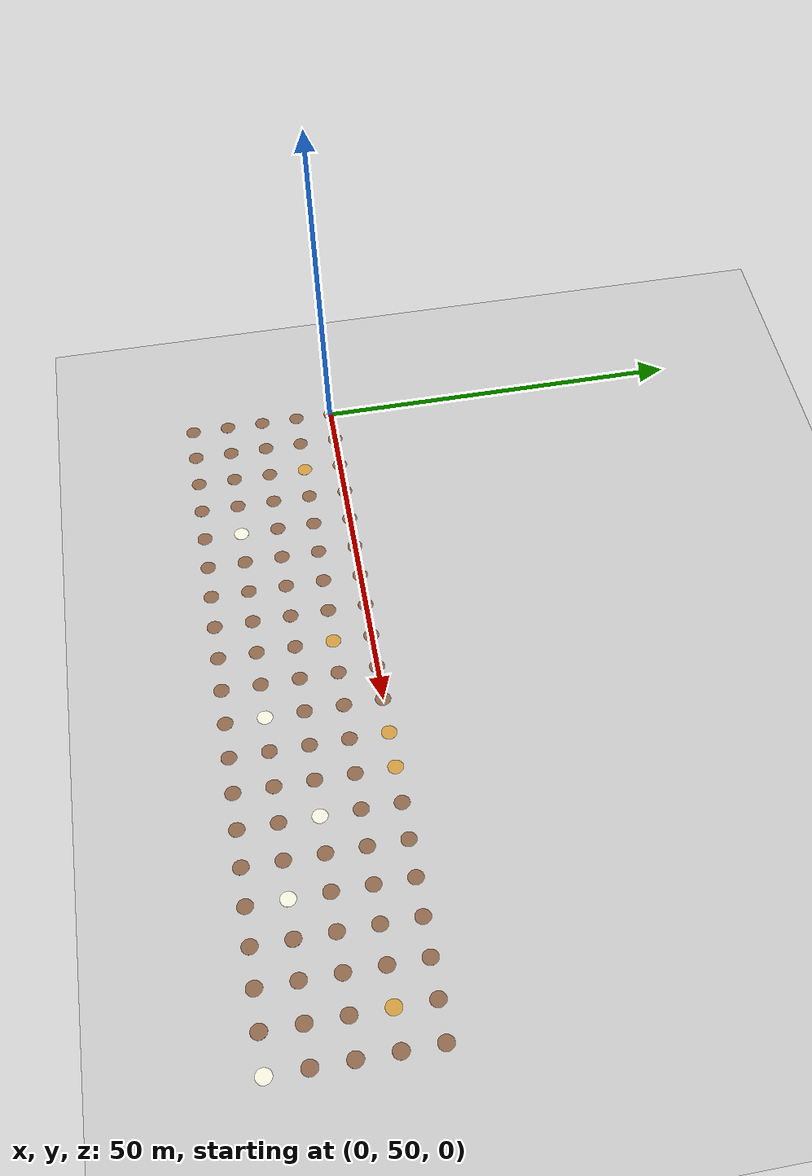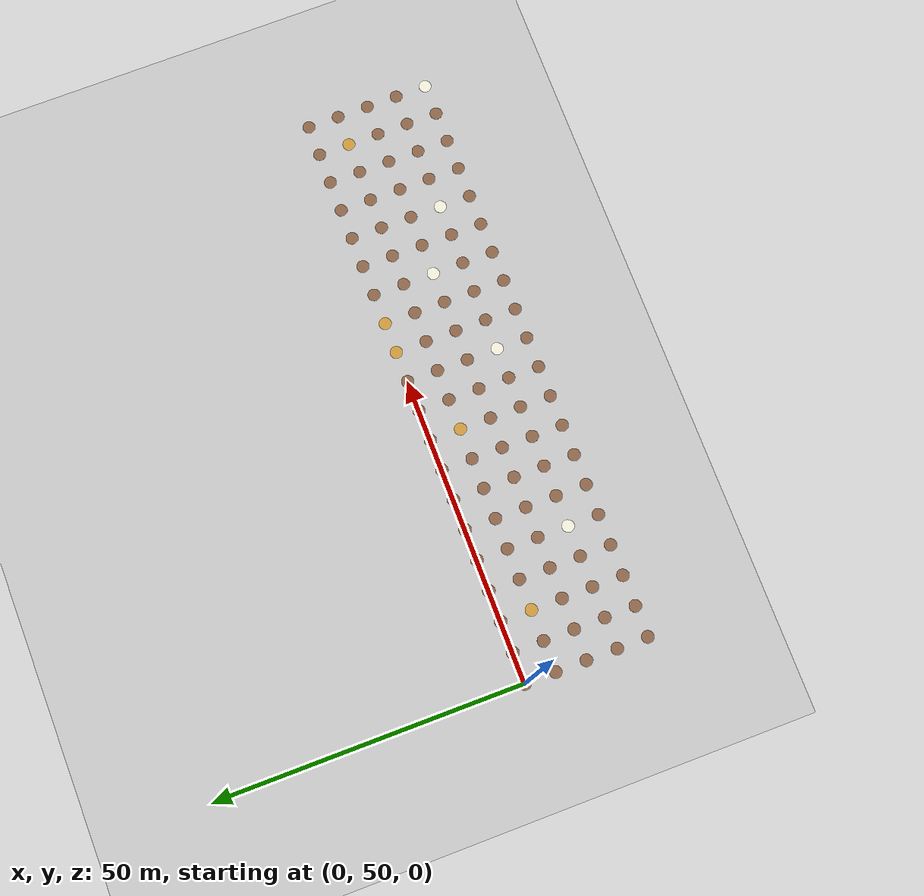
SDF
<sdf version="1.5">
 <world name="default">
  <physics type="ode">
   <ode>
    <solver><type>quick</type><iters>100</iters><sor>1.0</sor></solver>
    <constraints>
     <cfm>0.0</cfm>
     <erp>0.9</erp>
     <contact_max_correcting_vel>0.1</contact_max_correcting_vel>
     <contact_surface_layer>0.0</contact_surface_layer>
    </constraints>
   </ode>
   <real_time_update_rate>-1</real_time_update_rate>
  </physics>
  <model name="ground_plane">
   <static>true</static>
   <link name="link">
    <collision name="collision">
     <geometry><plane><normal>0 0 1</normal><size>5000 5000</size></plane></geometry>
     <surface><friction><ode><mu>1</mu><mu2>1</mu2></ode></friction></surface>
    </collision>
    <visual name="runway">
     <pose>000 0 0.005 0 0 0</pose>
     <cast_shadows>false</cast_shadows>
     <geometry><plane><normal>0 0 1</normal><size>1829 45</size></plane></geometry>
     <material>
      <script><uri>file://media/materials/scripts/gazebo.material</uri><name>Gazebo/Runway</name></script>
     </material>
    </visual>
    <visual name="grass">
     <pose>0 0 -0.1 0 0 0</pose>
     <cast_shadows>false</cast_shadows>
     <geometry><plane><normal>0 0 1</normal><size>5000 5000</size></plane></geometry>
     <material>
      <script><uri>file://media/materials/scripts/gazebo.material</uri><name>Gazebo/Grass</name></script>
     </material>
    </visual>
   </link>
  </model>
  <include><uri>model://sun</uri></include>
  <model name="zdrowe_drzewo1">
   <static>true</static>
   <include><uri>model://zdrowe_drzewo</uri></include>
   <pose>0 30 0.05 0 0 0</pose>
  </model>
  <model name="zdrowe_drzewo2">
   <static>true</static>
   <include><uri>model://zdrowe_drzewo</uri></include>
   <pose>5 30 0.05 0 0 0</pose>
  </model>
  <model name="zdrowe_drzewo3">
   <static>true</static>
   <include><uri>model://zdrowe_drzewo</uri></include>
   <pose>10 30 0.05 0 0 0</pose>
  </model>
  <model name="zdrowe_drzewo4">
   <static>true</static>
   <include><uri>model://zdrowe_drzewo</uri></include>
   <pose>15 30 0.05 0 0 0</pose>
  </model>
  <model name="zdrowe_drzewo5">
   <static>true</static>
   <include><uri>model://zdrowe_drzewo</uri></include>
   <pose>20 30 0.05 0 0 0</pose>
  </model>
  <model name="zdrowe_drzewo6">
   <static>true</static>
   <include><uri>model://zdrowe_drzewo</uri></include>
   <pose>25 30 0.05 0 0 0</pose>
  </model>
  <model name="zdrowe_drzewo7">
   <static>true</static>
   <include><uri>model://zdrowe_drzewo</uri></include>
   <pose>30 30 0.05 0 0 0</pose>
  </model>
  <model name="zdrowe_drzewo8">
   <static>true</static>
   <include><uri>model://zdrowe_drzewo</uri></include>
   <pose>35 30 0.05 0 0 0</pose>
  </model>
  <model name="zdrowe_drzewo9">
   <static>true</static>
   <include><uri>model://zdrowe_drzewo</uri></include>
   <pose>40 30 0.05 0 0 0</pose>
  </model>
  <model name="zdrowe_drzewo10">
   <static>true</static>
   <include><uri>model://zdrowe_drzewo</uri></include>
   <pose>45 30 0.05 0 0 0</pose>
  </model>
  <model name="zdrowe_drzewo11">
   <static>true</static>
   <include><uri>model://zdrowe_drzewo</uri></include>
   <pose>50 30 0.05 0 0 0</pose>
  </model>
  <model name="zdrowe_drzewo12">
   <static>true</static>
   <include><uri>model://zdrowe_drzewo</uri></include>
   <pose>55 30 0.05 0 0 0</pose>
  </model>
  <model name="zdrowe_drzewo13">
   <static>true</static>
   <include><uri>model://zdrowe_drzewo</uri></include>
   <pose>60 30 0.05 0 0 0</pose>
  </model>
  <model name="zdrowe_drzewo14">
   <static>true</static>
   <include><uri>model://zdrowe_drzewo</uri></include>
   <pose>65 30 0.05 0 0 0</pose>
  </model>
  <model name="zdrowe_drzewo15">
   <static>true</static>
   <include><uri>model://zdrowe_drzewo</uri></include>
   <pose>70 30 0.05 0 0 0</pose>
  </model>
  <model name="zdrowe_drzewo16">
   <static>true</static>
   <include><uri>model://zdrowe_drzewo</uri></include>
   <pose>75 30 0.05 0 0 0</pose>
  </model>
  <model name="zdrowe_drzewo17">
   <static>true</static>
   <include><uri>model://zdrowe_drzewo</uri></include>
   <pose>80 30 0.05 0 0 0</pose>
  </model>
  <model name="zdrowe_drzewo18">
   <static>true</static>
   <include><uri>model://zdrowe_drzewo</uri></include>
   <pose>85 30 0.05 0 0 0</pose>
  </model>
  <model name="zdrowe_drzewo19">
   <static>true</static>
   <include><uri>model://zdrowe_drzewo</uri></include>
   <pose>90 30 0.05 0 0 0</pose>
  </model>
  <model name="moczniak_jabloni_drzewo1">
   <static>true</static>
   <include><uri>model://moczniak_jabloni_drzewo</uri></include>
   <pose>95 30 0.05 0 0 0</pose>
  </model>
  <model name="zdrowe_drzewo20">
   <static>true</static>
   <include><uri>model://zdrowe_drzewo</uri></include>
   <pose>0 35 0.05 0 0 0</pose>
  </model>
  <model name="zdrowe_drzewo21">
   <static>true</static>
   <include><uri>model://zdrowe_drzewo</uri></include>
   <pose>5 35 0.05 0 0 0</pose>
  </model>
  <model name="zdrowe_drzewo22">
   <static>true</static>
   <include><uri>model://zdrowe_drzewo</uri></include>
   <pose>10 35 0.05 0 0 0</pose>
  </model>
  <model name="zdrowe_drzewo23">
   <static>true</static>
   <include><uri>model://zdrowe_drzewo</uri></include>
   <pose>15 35 0.05 0 0 0</pose>
  </model>
  <model name="moczniak_jabloni_drzewo2">
   <static>true</static>
   <include><uri>model://moczniak_jabloni_drzewo</uri></include>
   <pose>20 35 0.05 0 0 0</pose>
  </model>
  <model name="zdrowe_drzewo24">
   <static>true</static>
   <include><uri>model://zdrowe_drzewo</uri></include>
   <pose>25 35 0.05 0 0 0</pose>
  </model>
  <model name="zdrowe_drzewo25">
   <static>true</static>
   <include><uri>model://zdrowe_drzewo</uri></include>
   <pose>30 35 0.05 0 0 0</pose>
  </model>
  <model name="zdrowe_drzewo26">
   <static>true</static>
   <include><uri>model://zdrowe_drzewo</uri></include>
   <pose>35 35 0.05 0 0 0</pose>
  </model>
  <model name="zdrowe_drzewo27">
   <static>true</static>
   <include><uri>model://zdrowe_drzewo</uri></include>
   <pose>40 35 0.05 0 0 0</pose>
  </model>
  <model name="zdrowe_drzewo28">
   <static>true</static>
   <include><uri>model://zdrowe_drzewo</uri></include>
   <pose>45 35 0.05 0 0 0</pose>
  </model>
  <model name="moczniak_jabloni_drzewo3">
   <static>true</static>
   <include><uri>model://moczniak_jabloni_drzewo</uri></include>
   <pose>50 35 0.05 0 0 0</pose>
  </model>
  <model name="zdrowe_drzewo29">
   <static>true</static>
   <include><uri>model://zdrowe_drzewo</uri></include>
   <pose>55 35 0.05 0 0 0</pose>
  </model>
  <model name="zdrowe_drzewo30">
   <static>true</static>
   <include><uri>model://zdrowe_drzewo</uri></include>
   <pose>60 35 0.05 0 0 0</pose>
  </model>
  <model name="zdrowe_drzewo31">
   <static>true</static>
   <include><uri>model://zdrowe_drzewo</uri></include>
   <pose>65 35 0.05 0 0 0</pose>
  </model>
  <model name="zdrowe_drzewo32">
   <static>true</static>
   <include><uri>model://zdrowe_drzewo</uri></include>
   <pose>70 35 0.05 0 0 0</pose>
  </model>
  <model name="moczniak_jabloni_drzewo4">
   <static>true</static>
   <include><uri>model://moczniak_jabloni_drzewo</uri></include>
   <pose>75 35 0.05 0 0 0</pose>
  </model>
  <model name="zdrowe_drzewo33">
   <static>true</static>
   <include><uri>model://zdrowe_drzewo</uri></include>
   <pose>80 35 0.05 0 0 0</pose>
  </model>
  <model name="zdrowe_drzewo34">
   <static>true</static>
   <include><uri>model://zdrowe_drzewo</uri></include>
   <pose>85 35 0.05 0 0 0</pose>
  </model>
  <model name="zdrowe_drzewo35">
   <static>true</static>
   <include><uri>model://zdrowe_drzewo</uri></include>
   <pose>90 35 0.05 0 0 0</pose>
  </model>
  <model name="zdrowe_drzewo36">
   <static>true</static>
   <include><uri>model://zdrowe_drzewo</uri></include>
   <pose>95 35 0.05 0 0 0</pose>
  </model>
  <model name="zdrowe_drzewo37">
   <static>true</static>
   <include><uri>model://zdrowe_drzewo</uri></include>
   <pose>0 40 0.05 0 0 0</pose>
  </model>
  <model name="zdrowe_drzewo38">
   <static>true</static>
   <include><uri>model://zdrowe_drzewo</uri></include>
   <pose>5 40 0.05 0 0 0</pose>
  </model>
  <model name="zdrowe_drzewo39">
   <static>true</static>
   <include><uri>model://zdrowe_drzewo</uri></include>
   <pose>10 40 0.05 0 0 0</pose>
  </model>
  <model name="zdrowe_drzewo40">
   <static>true</static>
   <include><uri>model://zdrowe_drzewo</uri></include>
   <pose>15 40 0.05 0 0 0</pose>
  </model>
  <model name="zdrowe_drzewo41">
   <static>true</static>
   <include><uri>model://zdrowe_drzewo</uri></include>
   <pose>20 40 0.05 0 0 0</pose>
  </model>
  <model name="zdrowe_drzewo42">
   <static>true</static>
   <include><uri>model://zdrowe_drzewo</uri></include>
   <pose>25 40 0.05 0 0 0</pose>
  </model>
  <model name="zdrowe_drzewo43">
   <static>true</static>
   <include><uri>model://zdrowe_drzewo</uri></include>
   <pose>30 40 0.05 0 0 0</pose>
  </model>
  <model name="zdrowe_drzewo44">
   <static>true</static>
   <include><uri>model://zdrowe_drzewo</uri></include>
   <pose>35 40 0.05 0 0 0</pose>
  </model>
  <model name="zdrowe_drzewo45">
   <static>true</static>
   <include><uri>model://zdrowe_drzewo</uri></include>
   <pose>40 40 0.05 0 0 0</pose>
  </model>
  <model name="zdrowe_drzewo46">
   <static>true</static>
   <include><uri>model://zdrowe_drzewo</uri></include>
   <pose>45 40 0.05 0 0 0</pose>
  </model>
  <model name="zdrowe_drzewo47">
   <static>true</static>
   <include><uri>model://zdrowe_drzewo</uri></include>
   <pose>50 40 0.05 0 0 0</pose>
  </model>
  <model name="zdrowe_drzewo48">
   <static>true</static>
   <include><uri>model://zdrowe_drzewo</uri></include>
   <pose>55 40 0.05 0 0 0</pose>
  </model>
  <model name="zdrowe_drzewo49">
   <static>true</static>
   <include><uri>model://zdrowe_drzewo</uri></include>
   <pose>60 40 0.05 0 0 0</pose>
  </model>
  <model name="moczniak_jabloni_drzewo5">
   <static>true</static>
   <include><uri>model://moczniak_jabloni_drzewo</uri></include>
   <pose>65 40 0.05 0 0 0</pose>
  </model>
  <model name="zdrowe_drzewo50">
   <static>true</static>
   <include><uri>model://zdrowe_drzewo</uri></include>
   <pose>70 40 0.05 0 0 0</pose>
  </model>
  <model name="zdrowe_drzewo51">
   <static>true</static>
   <include><uri>model://zdrowe_drzewo</uri></include>
   <pose>75 40 0.05 0 0 0</pose>
  </model>
  <model name="zdrowe_drzewo52">
   <static>true</static>
   <include><uri>model://zdrowe_drzewo</uri></include>
   <pose>80 40 0.05 0 0 0</pose>
  </model>
  <model name="zdrowe_drzewo53">
   <static>true</static>
   <include><uri>model://zdrowe_drzewo</uri></include>
   <pose>85 40 0.05 0 0 0</pose>
  </model>
  <model name="zdrowe_drzewo54">
   <static>true</static>
   <include><uri>model://zdrowe_drzewo</uri></include>
   <pose>90 40 0.05 0 0 0</pose>
  </model>
  <model name="zdrowe_drzewo55">
   <static>true</static>
   <include><uri>model://zdrowe_drzewo</uri></include>
   <pose>95 40 0.05 0 0 0</pose>
  </model>
  <model name="zdrowe_drzewo56">
   <static>true</static>
   <include><uri>model://zdrowe_drzewo</uri></include>
   <pose>0 45 0.05 0 0 0</pose>
  </model>
  <model name="zdrowe_drzewo57">
   <static>true</static>
   <include><uri>model://zdrowe_drzewo</uri></include>
   <pose>5 45 0.05 0 0 0</pose>
  </model>
  <model name="parch_drzewo1">
   <static>true</static>
   <include><uri>model://parch_drzewo</uri></include>
   <pose>10 45 0.05 0 0 0</pose>
  </model>
  <model name="zdrowe_drzewo58">
   <static>true</static>
   <include><uri>model://zdrowe_drzewo</uri></include>
   <pose>15 45 0.05 0 0 0</pose>
  </model>
  <model name="zdrowe_drzewo59">
   <static>true</static>
   <include><uri>model://zdrowe_drzewo</uri></include>
   <pose>20 45 0.05 0 0 0</pose>
  </model>
  <model name="zdrowe_drzewo60">
   <static>true</static>
   <include><uri>model://zdrowe_drzewo</uri></include>
   <pose>25 45 0.05 0 0 0</pose>
  </model>
  <model name="zdrowe_drzewo61">
   <static>true</static>
   <include><uri>model://zdrowe_drzewo</uri></include>
   <pose>30 45 0.05 0 0 0</pose>
  </model>
  <model name="zdrowe_drzewo62">
   <static>true</static>
   <include><uri>model://zdrowe_drzewo</uri></include>
   <pose>35 45 0.05 0 0 0</pose>
  </model>
  <model name="parch_drzewo2">
   <static>true</static>
   <include><uri>model://parch_drzewo</uri></include>
   <pose>40 45 0.05 0 0 0</pose>
  </model>
  <model name="zdrowe_drzewo63">
   <static>true</static>
   <include><uri>model://zdrowe_drzewo</uri></include>
   <pose>45 45 0.05 0 0 0</pose>
  </model>
  <model name="zdrowe_drzewo64">
   <static>true</static>
   <include><uri>model://zdrowe_drzewo</uri></include>
   <pose>50 45 0.05 0 0 0</pose>
  </model>
  <model name="zdrowe_drzewo65">
   <static>true</static>
   <include><uri>model://zdrowe_drzewo</uri></include>
   <pose>55 45 0.05 0 0 0</pose>
  </model>
  <model name="zdrowe_drzewo66">
   <static>true</static>
   <include><uri>model://zdrowe_drzewo</uri></include>
   <pose>60 45 0.05 0 0 0</pose>
  </model>
  <model name="zdrowe_drzewo67">
   <static>true</static>
   <include><uri>model://zdrowe_drzewo</uri></include>
   <pose>65 45 0.05 0 0 0</pose>
  </model>
  <model name="zdrowe_drzewo68">
   <static>true</static>
   <include><uri>model://zdrowe_drzewo</uri></include>
   <pose>70 45 0.05 0 0 0</pose>
  </model>
  <model name="zdrowe_drzewo69">
   <static>true</static>
   <include><uri>model://zdrowe_drzewo</uri></include>
   <pose>75 45 0.05 0 0 0</pose>
  </model>
  <model name="zdrowe_drzewo70">
   <static>true</static>
   <include><uri>model://zdrowe_drzewo</uri></include>
   <pose>80 45 0.05 0 0 0</pose>
  </model>
  <model name="zdrowe_drzewo71">
   <static>true</static>
   <include><uri>model://zdrowe_drzewo</uri></include>
   <pose>85 45 0.05 0 0 0</pose>
  </model>
  <model name="parch_drzewo3">
   <static>true</static>
   <include><uri>model://parch_drzewo</uri></include>
   <pose>90 45 0.05 0 0 0</pose>
  </model>
  <model name="zdrowe_drzewo72">
   <static>true</static>
   <include><uri>model://zdrowe_drzewo</uri></include>
   <pose>95 45 0.05 0 0 0</pose>
  </model>
  <model name="zdrowe_drzewo73">
   <static>true</static>
   <include><uri>model://zdrowe_drzewo</uri></include>
   <pose>0 50 0.05 0 0 0</pose>
  </model>
  <model name="zdrowe_drzewo74">
   <static>true</static>
   <include><uri>model://zdrowe_drzewo</uri></include>
   <pose>5 50 0.05 0 0 0</pose>
  </model>
  <model name="zdrowe_drzewo75">
   <static>true</static>
   <include><uri>model://zdrowe_drzewo</uri></include>
   <pose>10 50 0.05 0 0 0</pose>
  </model>
  <model name="zdrowe_drzewo76">
   <static>true</static>
   <include><uri>model://zdrowe_drzewo</uri></include>
   <pose>15 50 0.05 0 0 0</pose>
  </model>
  <model name="zdrowe_drzewo77">
   <static>true</static>
   <include><uri>model://zdrowe_drzewo</uri></include>
   <pose>20 50 0.05 0 0 0</pose>
  </model>
  <model name="zdrowe_drzewo78">
   <static>true</static>
   <include><uri>model://zdrowe_drzewo</uri></include>
   <pose>25 50 0.05 0 0 0</pose>
  </model>
  <model name="zdrowe_drzewo79">
   <static>true</static>
   <include><uri>model://zdrowe_drzewo</uri></include>
   <pose>30 50 0.05 0 0 0</pose>
  </model>
  <model name="zdrowe_drzewo80">
   <static>true</static>
   <include><uri>model://zdrowe_drzewo</uri></include>
   <pose>35 50 0.05 0 0 0</pose>
  </model>
  <model name="zdrowe_drzewo81">
   <static>true</static>
   <include><uri>model://zdrowe_drzewo</uri></include>
   <pose>40 50 0.05 0 0 0</pose>
  </model>
  <model name="zdrowe_drzewo82">
   <static>true</static>
   <include><uri>model://zdrowe_drzewo</uri></include>
   <pose>45 50 0.05 0 0 0</pose>
  </model>
  <model name="zdrowe_drzewo83">
   <static>true</static>
   <include><uri>model://zdrowe_drzewo</uri></include>
   <pose>50 50 0.05 0 0 0</pose>
  </model>
  <model name="parch_drzewo4">
   <static>true</static>
   <include><uri>model://parch_drzewo</uri></include>
   <pose>55 50 0.05 0 0 0</pose>
  </model>
  <model name="parch_drzewo5">
   <static>true</static>
   <include><uri>model://parch_drzewo</uri></include>
   <pose>60 50 0.05 0 0 0</pose>
  </model>
  <model name="zdrowe_drzewo84">
   <static>true</static>
   <include><uri>model://zdrowe_drzewo</uri></include>
   <pose>65 50 0.05 0 0 0</pose>
  </model>
  <model name="zdrowe_drzewo85">
   <static>true</static>
   <include><uri>model://zdrowe_drzewo</uri></include>
   <pose>70 50 0.05 0 0 0</pose>
  </model>
  <model name="zdrowe_drzewo86">
   <static>true</static>
   <include><uri>model://zdrowe_drzewo</uri></include>
   <pose>75 50 0.05 0 0 0</pose>
  </model>
  <model name="zdrowe_drzewo87">
   <static>true</static>
   <include><uri>model://zdrowe_drzewo</uri></include>
   <pose>80 50 0.05 0 0 0</pose>
  </model>
  <model name="zdrowe_drzewo88">
   <static>true</static>
   <include><uri>model://zdrowe_drzewo</uri></include>
   <pose>85 50 0.05 0 0 0</pose>
  </model>
  <model name="zdrowe_drzewo89">
   <static>true</static>
   <include><uri>model://zdrowe_drzewo</uri></include>
   <pose>90 50 0.05 0 0 0</pose>
  </model>
  <model name="zdrowe_drzewo90">
   <static>true</static>
   <include><uri>model://zdrowe_drzewo</uri></include>
   <pose>95 50 0.05 0 0 0</pose>
  </model>
 </world>
</sdf>

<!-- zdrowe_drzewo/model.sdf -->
<sdf version='1.7'>
  <model name='zdrowe_drzewo'>
    <link name='link_0'>
      <inertial>
        <mass>1</mass>
        <inertia>
          <ixx>0.145833</ixx>
          <ixy>0</ixy>
          <ixz>0</ixz>
          <iyy>0.145833</iyy>
          <iyz>0</iyz>
          <izz>0.125</izz>
        </inertia>
        <pose>0 0 0 0 -0 0</pose>
      </inertial>
      <pose>0 0 0 0 -0 0</pose>
      <gravity>1</gravity>
      <self_collide>0</self_collide>
      <kinematic>0</kinematic>
      <enable_wind>0</enable_wind>
      <visual name='visual'>
        <pose>0 0 0 0 -0 0</pose>
        <geometry>
          <cylinder>
            <radius>1</radius>
            <length>0.01</length>
          </cylinder>
        </geometry>
        <material>
          <lighting>1</lighting>
          <script>
            <uri>file://media/materials/scripts/gazebo.material</uri>
            <name>Gazebo/Grey</name>
          </script>
          <shader type='pixel'>
            <normal_map>__default__</normal_map>
          </shader>
          <ambient>0.57 0.41 0.3 1</ambient>

        </material>
        <transparency>0</transparency>
        <cast_shadows>1</cast_shadows>
      </visual>
    </link>
    <static>1</static>
    <allow_auto_disable>1</allow_auto_disable>
  </model>
</sdf>

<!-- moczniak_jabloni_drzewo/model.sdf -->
<sdf version='1.7'>
  <model name='parch_drzewo'>
    <link name='link_0'>
      <inertial>
        <mass>1</mass>
        <inertia>
          <ixx>0.145833</ixx>
          <ixy>0</ixy>
          <ixz>0</ixz>
          <iyy>0.145833</iyy>
          <iyz>0</iyz>
          <izz>0.125</izz>
        </inertia>
        <pose>0 0 0 0 -0 0</pose>
      </inertial>
      <pose>0 0 0 0 0 0</pose>
      <gravity>1</gravity>
      <self_collide>0</self_collide>
      <kinematic>0</kinematic>
      <enable_wind>0</enable_wind>
      <visual name='visual'>
        <pose>0 0 0 0 -0 0</pose>
        <geometry>
          <cylinder>
            <radius>1</radius>
            <length>0.01</length>
          </cylinder>
        </geometry>
        <material>
          <lighting>1</lighting>
          <script>
            <uri>file://media/materials/scripts/gazebo.material</uri>
            <name>Gazebo/Grey</name>
          </script>
          <shader type='pixel'>
            <normal_map>__default__</normal_map>
          </shader>
          <ambient>0.976 0.965 0.89 1</ambient>

        </material>
        <transparency>0</transparency>
        <cast_shadows>1</cast_shadows>
      </visual>
    </link>
    <static>1</static>
    <allow_auto_disable>1</allow_auto_disable>
  </model>
</sdf>

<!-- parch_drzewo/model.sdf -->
<sdf version='1.7'>
  <model name='parch_drzewo'>
    <link name='link_0'>
      <inertial>
        <mass>1</mass>
        <inertia>
          <ixx>0.145833</ixx>
          <ixy>0</ixy>
          <ixz>0</ixz>
          <iyy>0.145833</iyy>
          <iyz>0</iyz>
          <izz>0.125</izz>
        </inertia>
        <pose>0 0 0 0 -0 0</pose>
      </inertial>
      <pose>0 0 0 0 0 0</pose>
      <gravity>1</gravity>
      <self_collide>0</self_collide>
      <kinematic>0</kinematic>
      <enable_wind>0</enable_wind>
      <visual name='visual'>
        <pose>0 0 0 0 -0 0</pose>
        <geometry>
          <cylinder>
            <radius>1</radius>
            <length>0.01</length>
          </cylinder>
        </geometry>
        <material>
          <lighting>1</lighting>
          <script>
            <uri>file://media/materials/scripts/gazebo.material</uri>
            <name>Gazebo/Grey</name>
          </script>
          <shader type='pixel'>
            <normal_map>__default__</normal_map>
          </shader>
          <ambient>0.83 0.62 0.25 1</ambient>

        </material>
        <transparency>0</transparency>
        <cast_shadows>1</cast_shadows>
      </visual>
    </link>
    <static>1</static>
    <allow_auto_disable>1</allow_auto_disable>
  </model>
</sdf>
